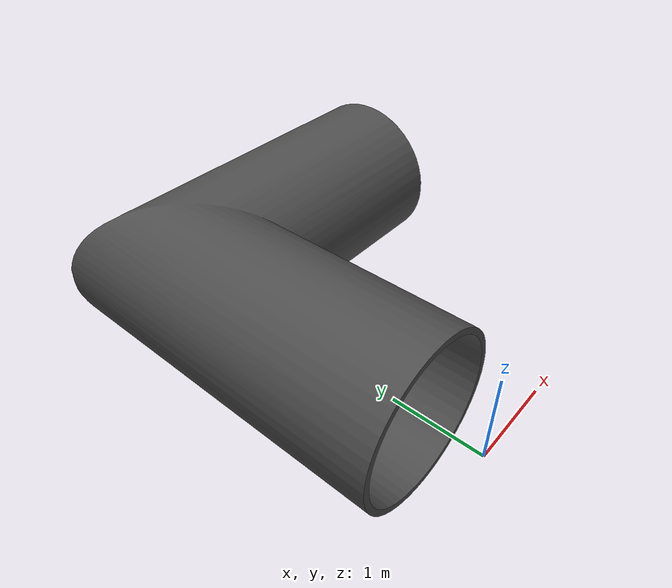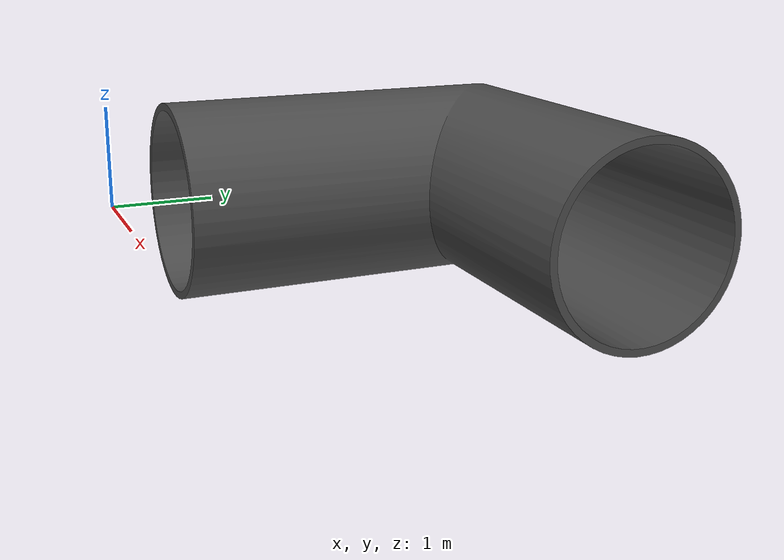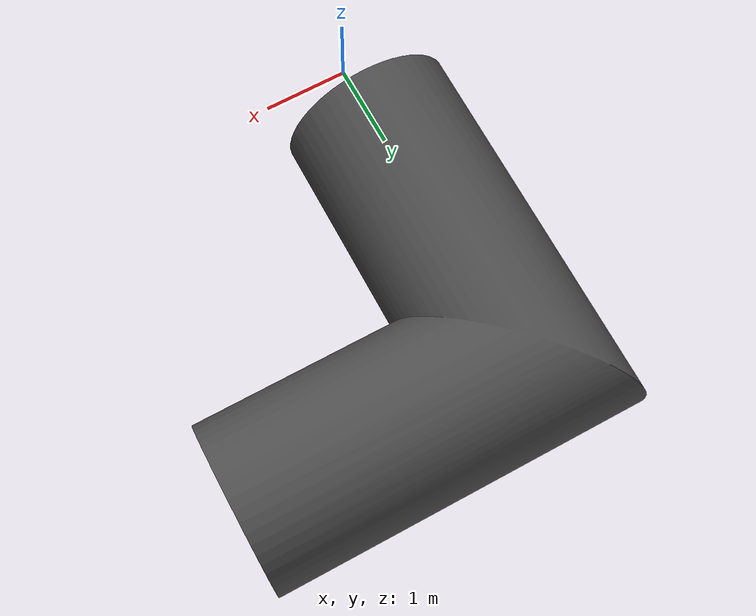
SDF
<?xml version="1.0" ?>
<sdf version="1.5">
  <model name="AIGC2_tunnel">
    <static>true</static>
	<link name='chassis1'>
		<collision name='collision1'>
			<geometry>
				<mesh>
				<scale>0.01 0.01 0.01</scale>
				<uri>model://AIGC2_tunnel/AIGC_TUNNEL.stl</uri></mesh>
			</geometry>
		</collision>

		<visual name='visual1'>
			<geometry>
				<mesh>
				<scale>0.01 0.01 0.01</scale>
				<uri>model://AIGC2_tunnel/AIGC_TUNNEL.stl</uri></mesh>
			</geometry>
		    <material>
		      <script>
		        <name>Gazebo/DarkGrey</name>
		        <uri>file://media/materials/scripts/gazebo.material</uri>
		      </script>
		    </material>
		</visual>
	</link>
  </model>
</sdf>
